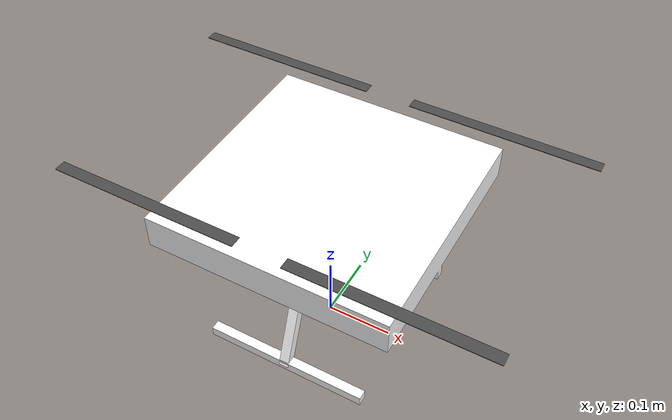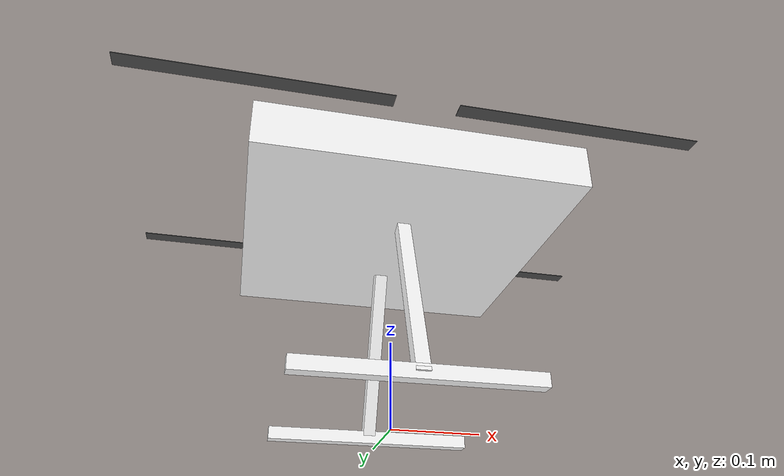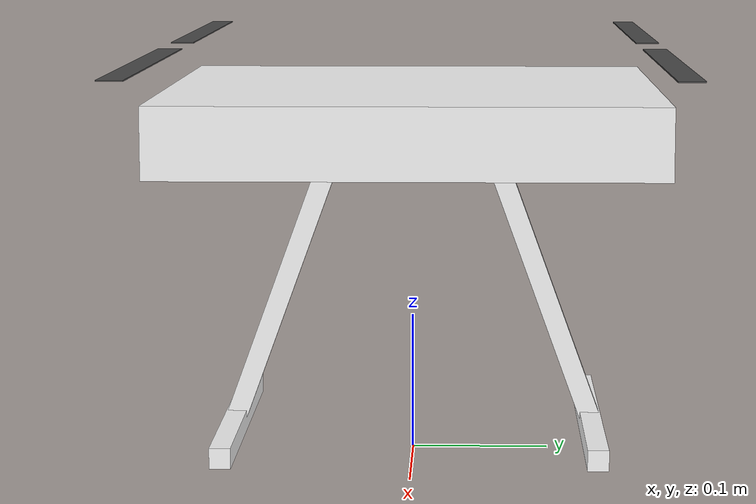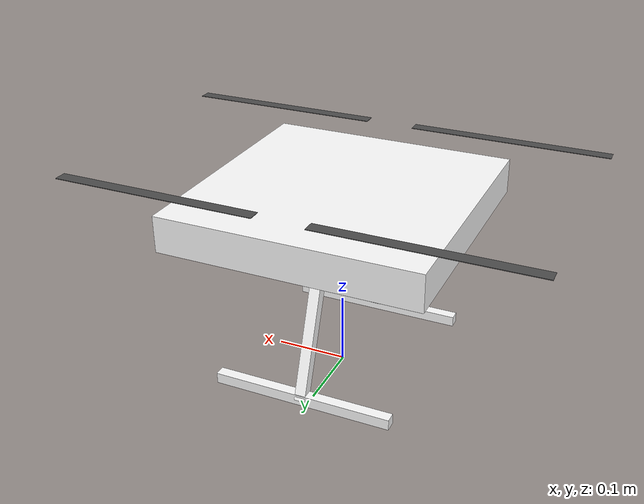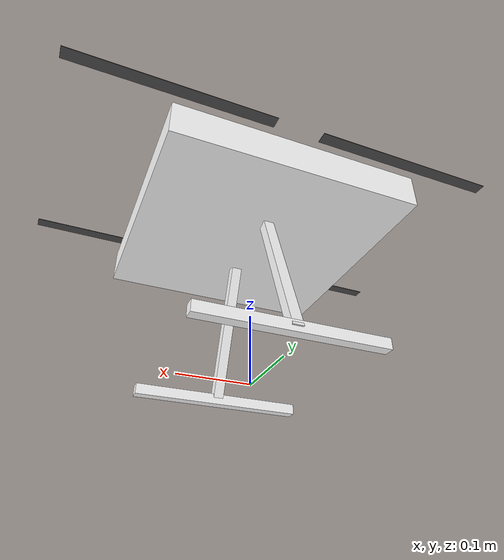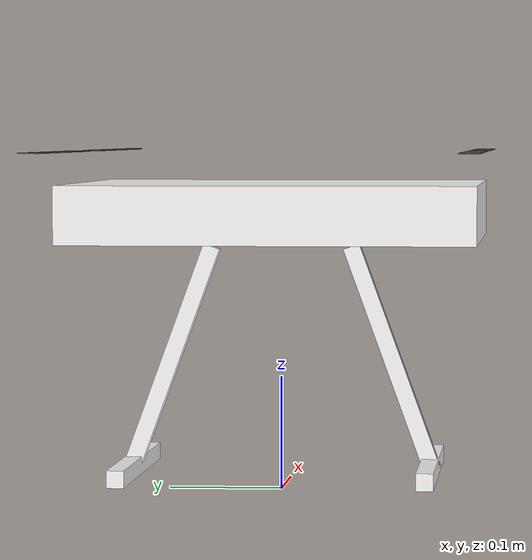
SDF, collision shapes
<?xml version="1.0" encoding="UTF-8"?>
<sdf version='1.9'>
  <model name='x500_px4'>
    <pose>0 0 .24 0 0 0</pose>
    <self_collide>false</self_collide>
    <static>false</static>
    <link name="base_link">
      <inertial>
        <mass>2.0</mass>
        <inertia>
          <ixx>0.02166666666666667</ixx>
          <ixy>0</ixy>
          <ixz>0</ixz>
          <iyy>0.02166666666666667</iyy>
          <iyz>0</iyz>
          <izz>0.04000000000000001</izz>
        </inertia>
      </inertial>
      <gravity>true</gravity>
      <velocity_decay/>
      <visual name="base_link_visual">
        <pose>0 0 .025 0 0 3.141592654</pose>
        <geometry>
          <mesh>
            <scale>1 1 1</scale>
            <uri>model://x500_px4/meshes/NXP-HGD-CF.dae</uri>
          </mesh>
        </geometry>
      </visual>
      <visual name="5010_motor_base_0">
        <pose>0.174 0.174 .032 0 0 -.45</pose>
        <geometry>
          <mesh>
            <scale>1 1 1</scale>
            <uri>model://x500_px4/meshes/5010Base.dae</uri>
          </mesh>
        </geometry>
      </visual>
      <visual name="5010_motor_base_1">
        <pose>-0.174 0.174 .032 0 0 -.45</pose>
        <geometry>
          <mesh>
            <scale>1 1 1</scale>
            <uri>model://x500_px4/meshes/5010Base.dae</uri>
          </mesh>
        </geometry>
      </visual>
      <visual name="5010_motor_base_2">
        <pose>0.174 -0.174 .032 0 0 -.45</pose>
        <geometry>
          <mesh>
            <scale>1 1 1</scale>
            <uri>model://x500_px4/meshes/5010Base.dae</uri>
          </mesh>
        </geometry>
      </visual>
      <visual name="5010_motor_base_3">
        <pose>-0.174 -0.174 .032 0 0 -.45</pose>
        <geometry>
          <mesh>
            <scale>1 1 1</scale>
            <uri>model://x500_px4/meshes/5010Base.dae</uri>
          </mesh>
        </geometry>
      </visual>
      <visual name="NXP_FMUK66_FRONT">
        <pose>0.047 .001 .043 1 0 1.57</pose>
        <cast_shadows>false</cast_shadows>
        <geometry>
          <box>
            <size>.013 .007 .0001</size>
          </box>
        </geometry>
        <material>
          <diffuse>1.0 1.0 1.0</diffuse>
          <specular>1.0 1.0 1.0</specular>
          <pbr>
            <metal>
              <albedo_map>model://x500_px4/materials/textures/nxp.png</albedo_map>
            </metal>
          </pbr>
        </material>
      </visual>
      <visual name="NXP_FMUK66_TOP">
        <pose>-0.023 0 .0515 0 0 -1.57</pose>
        <cast_shadows>false</cast_shadows>
        <geometry>
          <box>
            <size>.013 .007 .0001</size>
          </box>
        </geometry>
        <material>
          <diffuse>1.0 1.0 1.0</diffuse>
          <specular>1.0 1.0 1.0</specular>
          <pbr>
            <metal>
              <albedo_map>model://x500_px4/materials/textures/nxp.png</albedo_map>
            </metal>
          </pbr>
        </material>
      </visual>
      <visual name="RDDRONE_FMUK66_TOP">
        <pose>-.03 0 .0515 0 0 -1.57</pose>
        <cast_shadows>false</cast_shadows>
        <geometry>
          <box>
            <size>.032 .0034 .0001</size>
          </box>
        </geometry>
        <material>
          <diffuse>1.0 1.0 1.0</diffuse>
          <specular>1.0 1.0 1.0</specular>
          <pbr>
            <metal>
              <albedo_map>model://x500_px4/materials/textures/rd.png</albedo_map>
            </metal>
          </pbr>
        </material>
      </visual>
      <collision name="base_link_collision_0">
        <pose>0 0 .007 0 0 0</pose>
        <geometry>
          <box>
            <size>0.35355339059327373 0.35355339059327373 0.05</size>
          </box>
        </geometry>
        <surface>
          <contact>
            <ode>
              <min_depth>0.001</min_depth>
              <max_vel>0</max_vel>
            </ode>
          </contact>
          <friction>
            <ode/>
          </friction>
        </surface>
      </collision>
      <collision name="base_link_collision_1">
        <pose>0 -0.098 -.123 -0.35 0 0</pose>
        <geometry>
          <box>
            <size>0.015 0.015 0.21</size>
          </box>
        </geometry>
        <surface>
          <contact>
            <ode>
              <min_depth>0.001</min_depth>
              <max_vel>0</max_vel>
            </ode>
          </contact>
          <friction>
            <ode/>
          </friction>
        </surface>
      </collision>
      <collision name="base_link_collision_2">
        <pose>0 0.098 -.123 0.35 0 0</pose>
        <geometry>
          <box>
            <size>0.015 0.015 0.21</size>
          </box>
        </geometry>
        <surface>
          <contact>
            <ode>
              <min_depth>0.001</min_depth>
              <max_vel>0</max_vel>
            </ode>
          </contact>
          <friction>
            <ode/>
          </friction>
        </surface>
      </collision>
      <collision name="base_link_collision_3">
        <pose>0 -0.132 -.2195 0 0 0</pose>
        <geometry>
          <box>
            <size>0.25 0.015 0.015</size>
          </box>
        </geometry>
        <surface>
          <contact>
            <ode>
              <min_depth>0.001</min_depth>
              <max_vel>0</max_vel>
            </ode>
          </contact>
          <friction>
            <ode/>
          </friction>
        </surface>
      </collision>
      <collision name="base_link_collision_4">
        <pose>0 0.132 -.2195 0 0 0</pose>
        <geometry>
          <box>
            <size>0.25 0.015 0.015</size>
          </box>
        </geometry>
        <surface>
          <contact>
            <ode>
              <min_depth>0.001</min_depth>
              <max_vel>0</max_vel>
            </ode>
          </contact>
          <friction>
            <ode/>
          </friction>
        </surface>
      </collision>
      <sensor name="air_pressure_sensor" type="air_pressure">
        <always_on>1</always_on>
        <update_rate>50</update_rate>
        <air_pressure>
          <pressure>
            <noise type="gaussian">
              <mean>0</mean>
              <stddev>0.01</stddev>
            </noise>
          </pressure>
        </air_pressure>
      </sensor>
      <sensor name="imu_sensor" type="imu">
        <always_on>1</always_on>
        <update_rate>250</update_rate>
        <imu>
          <angular_velocity>
            <x>
              <noise type="gaussian">
                <mean>0</mean>
                <stddev>0.00018665</stddev>
                <dynamic_bias_stddev>3.8785e-05</dynamic_bias_stddev>
                <dynamic_bias_correlation_time>1000</dynamic_bias_correlation_time>
              </noise>
            </x>
            <y>
              <noise type="gaussian">
                <mean>0</mean>
                <stddev>0.00018665</stddev>
                <dynamic_bias_stddev>3.8785e-05</dynamic_bias_stddev>
                <dynamic_bias_correlation_time>1000</dynamic_bias_correlation_time>
              </noise>
            </y>
            <z>
              <noise type="gaussian">
                <mean>0</mean>
                <stddev>0.00018665</stddev>
                <dynamic_bias_stddev>3.8785e-05</dynamic_bias_stddev>
                <dynamic_bias_correlation_time>1000</dynamic_bias_correlation_time>
              </noise>
            </z>
          </angular_velocity>
          <linear_acceleration>
            <x>
              <noise type="gaussian">
                <mean>0</mean>
                <stddev>0.00186</stddev>
                <dynamic_bias_stddev>0.006</dynamic_bias_stddev>
                <dynamic_bias_correlation_time>300</dynamic_bias_correlation_time>
              </noise>
            </x>
            <y>
              <noise type="gaussian">
                <mean>0</mean>
                <stddev>0.00186</stddev>
                <dynamic_bias_stddev>0.006</dynamic_bias_stddev>
                <dynamic_bias_correlation_time>300</dynamic_bias_correlation_time>
              </noise>
            </y>
            <z>
              <noise type="gaussian">
                <mean>0</mean>
                <stddev>0.00186</stddev>
                <dynamic_bias_stddev>0.006</dynamic_bias_stddev>
                <dynamic_bias_correlation_time>300</dynamic_bias_correlation_time>
              </noise>
            </z>
          </linear_acceleration>
        </imu>
      </sensor>
      <sensor name="navsat_sensor" type="navsat">
        <always_on>1</always_on>
        <update_rate>30</update_rate>
      </sensor>
    </link>

    <!-- IMU -->
    <model name='imu'>
        <link name="internal">
            <inertial>
                <mass>0.005</mass>
                <inertia>
                    <ixx>8.33e-06</ixx>
                    <ixy>0</ixy>
                    <ixz>0</ixz>
                    <iyy>8.33e-06</iyy>
                    <iyz>0</iyz>
                    <izz>8.33e-06</izz>
                </inertia>
            </inertial>
            <sensor name='imu' type='imu'>
                <always_on>1</always_on>
                <update_rate>250</update_rate>
                <imu>
                    <angular_velocity>
                        <x>
                            <noise type='gaussian'>
                                <mean>0</mean>
                                <stddev>0.009</stddev>
                                <bias_mean>0.00075</bias_mean>
                                <bias_stddev>0.005</bias_stddev>
                                <dynamic_bias_stddev>0.00002</dynamic_bias_stddev>
                                <dynamic_bias_correlation_time>400.0</dynamic_bias_correlation_time>
                                <precision>0.00025</precision>
                            </noise>
                        </x>
                        <y>
                            <noise type='gaussian'>
                                <mean>0</mean>
                                <stddev>0.009</stddev>
                                <bias_mean>0.00075</bias_mean>
                                <bias_stddev>0.005</bias_stddev>
                                <dynamic_bias_stddev>0.00002</dynamic_bias_stddev>
                                <dynamic_bias_correlation_time>400.0</dynamic_bias_correlation_time>
                                <precision>0.00025</precision>
                            </noise>
                        </y>
                        <z>
                            <noise type='gaussian'>
                                <mean>0</mean>
                                <stddev>0.009</stddev>
                                <bias_mean>0.00075</bias_mean>
                                <bias_stddev>0.005</bias_stddev>
                                <dynamic_bias_stddev>0.00002</dynamic_bias_stddev>
                                <dynamic_bias_correlation_time>400.0</dynamic_bias_correlation_time>
                                <precision>0.00025</precision>
                            </noise>
                        </z>
                    </angular_velocity>
                    <linear_acceleration>
                        <x>
                            <noise type='gaussian'>
                                <mean>0</mean>
                                <stddev>0.021</stddev>
                                <bias_mean>0.05</bias_mean>
                                <bias_stddev>0.0075</bias_stddev>
                                <dynamic_bias_stddev>0.000375</dynamic_bias_stddev>
                                <dynamic_bias_correlation_time>175.0</dynamic_bias_correlation_time>
                                <precision>0.005</precision>
                            </noise>
                        </x>
                        <y>
                            <noise type='gaussian'>
                                <mean>0</mean>
                                <stddev>0.021</stddev>
                                <bias_mean>0.05</bias_mean>
                                <bias_stddev>0.0075</bias_stddev>
                                <dynamic_bias_stddev>0.000375</dynamic_bias_stddev>
                                <dynamic_bias_correlation_time>175.0</dynamic_bias_correlation_time>
                                <precision>0.005</precision>
                            </noise>
                        </y>
                        <z>
                            <noise type='gaussian'>
                                <mean>0</mean>
                                <stddev>0.021</stddev>
                                <bias_mean>0.05</bias_mean>
                                <bias_stddev>0.0075</bias_stddev>
                                <dynamic_bias_stddev>0.000375</dynamic_bias_stddev>
                                <dynamic_bias_correlation_time>175.0</dynamic_bias_correlation_time>
                                <precision>0.005</precision>
                            </noise>
                        </z>
                    </linear_acceleration>
                </imu>
            </sensor>
        </link>
    </model>

    <joint name="imu_joint" type="fixed">
        <parent>base_link</parent>
        <child>imu</child>
    </joint>

    <link name="rotor_0">
      <gravity>true</gravity>
      <self_collide>false</self_collide>
      <velocity_decay/>
      <pose>0.174 -0.174 0.06 0 0 0</pose>
      <inertial>
          <mass>0.016076923076923075</mass>
          <inertia>
            <ixx>3.8464910483993325e-07</ixx>
            <iyy>2.6115851691700804e-05</iyy>
            <izz>2.649858234714004e-05</izz>
          </inertia>
        </inertial>
      <visual name="rotor_0_visual">
        <pose>-0.022 -0.14638461538461536 -0.016 0 0 0</pose>
        <geometry>
          <mesh>
            <scale>0.8461538461538461 0.8461538461538461 0.8461538461538461</scale>
            <uri>model://x500_px4/meshes/1345_prop_ccw.stl</uri>
          </mesh>
        </geometry>
        <material>
          <script>
            <name>Gazebo/DarkGrey</name>
            <uri>file://media/materials/scripts/gazebo.material</uri>
          </script>
        </material>
      </visual>
      <visual name="rotor_0_visual_motor_bell">
        <pose>0 0 -.032 0 0 0</pose>
        <geometry>
          <mesh>
            <scale>1 1 1</scale>
            <uri>model://x500_px4/meshes/5010Bell.dae</uri>
          </mesh>
        </geometry>
      </visual>
      <collision name="rotor_0_collision">
        <pose>0 0 0 0 0 0 </pose>
        <geometry>
          <box>
            <size>0.2792307692307692 0.016923076923076923 0.0008461538461538462</size>
          </box>
        </geometry>
        <surface>
          <contact>
            <ode>
              <min_depth>0.001</min_depth>
              <max_vel>0</max_vel>
            </ode>
          </contact>
          <friction>
            <ode/>
          </friction>
        </surface>
      </collision>
    </link>
    <joint name="rotor_0_joint" type="revolute">
      <parent>base_link</parent>
      <child>rotor_0</child>
      <axis>
        <xyz>0 0 1</xyz>
        <limit>
          <lower>-1e+16</lower>
          <upper>1e+16</upper>
        </limit>
        <dynamics>
          <spring_reference>0</spring_reference>
          <spring_stiffness>0</spring_stiffness>
        </dynamics>
      </axis>
    </joint>
    <link name="rotor_1">
      <gravity>true</gravity>
      <self_collide>false</self_collide>
      <velocity_decay/>
      <pose>-0.174 0.174 0.06 0 0 0</pose>
      <inertial>
          <mass>0.016076923076923075</mass>
          <inertia>
            <ixx>3.8464910483993325e-07</ixx>
            <iyy>2.6115851691700804e-05</iyy>
            <izz>2.649858234714004e-05</izz>
          </inertia>
        </inertial>
      <visual name="rotor_1_visual">
        <pose>-0.022 -0.14638461538461536 -0.016 0 0 0</pose>
        <geometry>
          <mesh>
            <scale>0.8461538461538461 0.8461538461538461 0.8461538461538461</scale>
            <uri>model://x500_px4/meshes/1345_prop_ccw.stl</uri>
          </mesh>
        </geometry>
        <material>
          <script>
            <name>Gazebo/DarkGrey</name>
            <uri>file://media/materials/scripts/gazebo.material</uri>
          </script>
        </material>
      </visual>
      <visual name="rotor_1_visual_motor_top">
        <pose>0 0 -.032 0 0 0</pose>
        <geometry>
          <mesh>
            <scale>1 1 1</scale>
            <uri>model://x500_px4/meshes/5010Bell.dae</uri>
          </mesh>
        </geometry>
      </visual>
      <collision name="rotor_1_collision">
        <pose>0 0 0 0 0 0 </pose>
        <geometry>
          <box>
            <size>0.2792307692307692 0.016923076923076923 0.0008461538461538462</size>
          </box>
        </geometry>
        <surface>
          <contact>
            <ode>
              <min_depth>0.001</min_depth>
              <max_vel>0</max_vel>
            </ode>
          </contact>
          <friction>
            <ode/>
          </friction>
        </surface>
      </collision>
    </link>
    <joint name="rotor_1_joint" type="revolute">
      <parent>base_link</parent>
      <child>rotor_1</child>
      <axis>
        <xyz>0 0 1</xyz>
        <limit>
          <lower>-1e+16</lower>
          <upper>1e+16</upper>
        </limit>
        <dynamics>
          <spring_reference>0</spring_reference>
          <spring_stiffness>0</spring_stiffness>
        </dynamics>
      </axis>
    </joint>
    <link name="rotor_2">
      <gravity>true</gravity>
      <self_collide>false</self_collide>
      <velocity_decay/>
      <pose>0.174 0.174 0.06 0 0 0</pose>
      <inertial>
          <mass>0.016076923076923075</mass>
          <inertia>
            <ixx>3.8464910483993325e-07</ixx>
            <iyy>2.6115851691700804e-05</iyy>
            <izz>2.649858234714004e-05</izz>
          </inertia>
        </inertial>
      <visual name="rotor_2_visual">
        <pose>-0.022 -0.14638461538461536 -0.016 0 0 0</pose>
        <geometry>
          <mesh>
            <scale>0.8461538461538461 0.8461538461538461 0.8461538461538461</scale>
            <uri>model://x500_px4/meshes/1345_prop_cw.stl</uri>
          </mesh>
        </geometry>
        <material>
          <script>
            <name>Gazebo/DarkGrey</name>
            <uri>file://media/materials/scripts/gazebo.material</uri>
          </script>
        </material>
      </visual>
      <visual name="rotor_2_visual_motor_top">
        <pose>0 0 -.032 0 0 0</pose>
        <geometry>
          <mesh>
            <scale>1 1 1</scale>
            <uri>model://x500_px4/meshes/5010Bell.dae</uri>
          </mesh>
        </geometry>
      </visual>
      <collision name="rotor_2_collision">
        <pose>0 0 0 0 0 0 </pose>
        <geometry>
          <box>
            <size>0.2792307692307692 0.016923076923076923 0.0008461538461538462</size>
          </box>
        </geometry>
        <surface>
          <contact>
            <ode>
              <min_depth>0.001</min_depth>
              <max_vel>0</max_vel>
            </ode>
          </contact>
          <friction>
            <ode/>
          </friction>
        </surface>
      </collision>
    </link>
    <joint name="rotor_2_joint" type="revolute">
      <parent>base_link</parent>
      <child>rotor_2</child>
      <axis>
        <xyz>0 0 1</xyz>
        <limit>
          <lower>-1e+16</lower>
          <upper>1e+16</upper>
        </limit>
        <dynamics>
          <spring_reference>0</spring_reference>
          <spring_stiffness>0</spring_stiffness>
        </dynamics>
      </axis>
    </joint>
    <link name="rotor_3">
      <gravity>true</gravity>
      <self_collide>false</self_collide>
      <velocity_decay/>
      <pose>-0.174 -0.174 0.06 0 0 0</pose>
      <inertial>
          <mass>0.016076923076923075</mass>
          <inertia>
            <ixx>3.8464910483993325e-07</ixx>
            <iyy>2.6115851691700804e-05</iyy>
            <izz>2.649858234714004e-05</izz>
          </inertia>
        </inertial>
      <visual name="rotor_3_visual">
        <pose>-0.022 -0.14638461538461536 -0.016 0 0 0</pose>
        <geometry>
          <mesh>
            <scale>0.8461538461538461 0.8461538461538461 0.8461538461538461</scale>
            <uri>model://x500_px4/meshes/1345_prop_cw.stl</uri>
          </mesh>
        </geometry>
        <material>
          <script>
            <name>Gazebo/DarkGrey</name>
            <uri>file://media/materials/scripts/gazebo.material</uri>
          </script>
        </material>
      </visual>
      <visual name="rotor_3_visual_motor_top">
        <pose>0 0 -.032 0 0 0</pose>
        <geometry>
          <mesh>
            <scale>1 1 1</scale>
            <uri>model://x500_px4/meshes/5010Bell.dae</uri>
          </mesh>
        </geometry>
      </visual>
      <collision name="rotor_3_collision">
        <pose>0 0 0 0 0 0 </pose>
        <geometry>
          <box>
            <size>0.2792307692307692 0.016923076923076923 0.0008461538461538462</size>
          </box>
        </geometry>
        <surface>
          <contact>
            <ode>
              <min_depth>0.001</min_depth>
              <max_vel>0</max_vel>
            </ode>
          </contact>
          <friction>
            <ode/>
          </friction>
        </surface>
      </collision>
    </link>
    <joint name="rotor_3_joint" type="revolute">
      <parent>base_link</parent>
      <child>rotor_3</child>
      <axis>
        <xyz>0 0 1</xyz>
        <limit>
          <lower>-1e+16</lower>
          <upper>1e+16</upper>
        </limit>
        <dynamics>
          <spring_reference>0</spring_reference>
          <spring_stiffness>0</spring_stiffness>
        </dynamics>
      </axis>
    </joint>

    <!-- adição de plugins de movimento do drone -->
        <!-- Publica a pose do modelo (ground truth) para poder ser bridgeada ao ROS -->
<!-- Publica a pose do modelo (ground truth) para poder ser bridgeada ao ROS -->
    <plugin filename="gz-sim-pose-publisher-system" name="gz::sim::systems::PosePublisher">
      <publish_model_pose>true</publish_model_pose>
      <publish_link_pose>false</publish_link_pose>
      <publish_sensor_pose>false</publish_sensor_pose>
      <publish_collision_pose>false</publish_collision_pose>
      <publish_visual_pose>false</publish_visual_pose>
      <publish_nested_model_pose>false</publish_nested_model_pose>
      <use_pose_vector_msg>false</use_pose_vector_msg>
      <static_publisher>false</static_publisher>
    </plugin>

    <!-- Modelo de motor por rotor: converte comando de velocidade em empuxo real -->
    <plugin filename="gz-sim-multicopter-motor-model-system" name="gz::sim::systems::MulticopterMotorModel">
      <robotNamespace>x500_0</robotNamespace>
      <jointName>rotor_0_joint</jointName>
      <linkName>rotor_0</linkName>
      <turningDirection>ccw</turningDirection>
      <timeConstantUp>0.0125</timeConstantUp>
      <timeConstantDown>0.025</timeConstantDown>
      <maxRotVelocity>1000.0</maxRotVelocity>
      <motorConstant>8.54858e-06</motorConstant>
      <momentConstant>0.016</momentConstant>
      <commandSubTopic>command/motor_speed</commandSubTopic>
      <motorNumber>0</motorNumber>
      <rotorDragCoefficient>8.06428e-05</rotorDragCoefficient>
      <rollingMomentCoefficient>1e-06</rollingMomentCoefficient>
      <rotorVelocitySlowdownSim>10</rotorVelocitySlowdownSim>
      <motorType>velocity</motorType>
    </plugin>
    <plugin filename="gz-sim-multicopter-motor-model-system" name="gz::sim::systems::MulticopterMotorModel">
      <robotNamespace>x500_0</robotNamespace>
      <jointName>rotor_1_joint</jointName>
      <linkName>rotor_1</linkName>
      <turningDirection>ccw</turningDirection>
      <timeConstantUp>0.0125</timeConstantUp>
      <timeConstantDown>0.025</timeConstantDown>
      <maxRotVelocity>1000.0</maxRotVelocity>
      <motorConstant>8.54858e-06</motorConstant>
      <momentConstant>0.016</momentConstant>
      <commandSubTopic>command/motor_speed</commandSubTopic>
      <motorNumber>1</motorNumber>
      <rotorDragCoefficient>8.06428e-05</rotorDragCoefficient>
      <rollingMomentCoefficient>1e-06</rollingMomentCoefficient>
      <rotorVelocitySlowdownSim>10</rotorVelocitySlowdownSim>
      <motorType>velocity</motorType>
    </plugin>
    <plugin filename="gz-sim-multicopter-motor-model-system" name="gz::sim::systems::MulticopterMotorModel">
      <robotNamespace>x500_0</robotNamespace>
      <jointName>rotor_2_joint</jointName>
      <linkName>rotor_2</linkName>
      <turningDirection>cw</turningDirection>
      <timeConstantUp>0.0125</timeConstantUp>
      <timeConstantDown>0.025</timeConstantDown>
      <maxRotVelocity>1000.0</maxRotVelocity>
      <motorConstant>8.54858e-06</motorConstant>
      <momentConstant>0.016</momentConstant>
      <commandSubTopic>command/motor_speed</commandSubTopic>
      <motorNumber>2</motorNumber>
      <rotorDragCoefficient>8.06428e-05</rotorDragCoefficient>
      <rollingMomentCoefficient>1e-06</rollingMomentCoefficient>
      <rotorVelocitySlowdownSim>10</rotorVelocitySlowdownSim>
      <motorType>velocity</motorType>
    </plugin>
    <plugin filename="gz-sim-multicopter-motor-model-system" name="gz::sim::systems::MulticopterMotorModel">
      <robotNamespace>x500_0</robotNamespace>
      <jointName>rotor_3_joint</jointName>
      <linkName>rotor_3</linkName>
      <turningDirection>cw</turningDirection>
      <timeConstantUp>0.0125</timeConstantUp>
      <timeConstantDown>0.025</timeConstantDown>
      <maxRotVelocity>1000.0</maxRotVelocity>
      <motorConstant>8.54858e-06</motorConstant>
      <momentConstant>0.016</momentConstant>
      <commandSubTopic>command/motor_speed</commandSubTopic>
      <motorNumber>3</motorNumber>
      <rotorDragCoefficient>8.06428e-05</rotorDragCoefficient>
      <rollingMomentCoefficient>1e-06</rollingMomentCoefficient>
      <rotorVelocitySlowdownSim>10</rotorVelocitySlowdownSim>
      <motorType>velocity</motorType>
    </plugin>

    <!-- Controlador de velocidade: recebe cmd_vel + enable e comanda os 4 motores acima -->
    <plugin filename="gz-sim-multicopter-control-system" name="gz::sim::systems::MulticopterVelocityControl">
      <robotNamespace>x500_0</robotNamespace>
      <commandSubTopic>cmd_vel</commandSubTopic>
      <enableSubTopic>enable</enableSubTopic>
      <comLinkName>base_link</comLinkName>
      <velocityGain>2.7 2.7 2.7</velocityGain>
      <attitudeGain>2 3 0.15</attitudeGain>
      <angularRateGain>0.4 0.52 0.18</angularRateGain>
      <maximumLinearAcceleration>2 2 2</maximumLinearAcceleration>
      <maximumLinearVelocity>3 3 2</maximumLinearVelocity>
      <maximumAngularVelocity>3 3 3</maximumAngularVelocity>
      <rotorConfiguration>
        <rotor>
          <jointName>rotor_0_joint</jointName>
          <forceConstant>8.54858e-06</forceConstant>
          <momentConstant>0.016</momentConstant>
          <direction>1</direction>
        </rotor>
        <rotor>
          <jointName>rotor_1_joint</jointName>
          <forceConstant>8.54858e-06</forceConstant>
          <momentConstant>0.016</momentConstant>
          <direction>1</direction>
        </rotor>
        <rotor>
          <jointName>rotor_2_joint</jointName>
          <forceConstant>8.54858e-06</forceConstant>
          <momentConstant>0.016</momentConstant>
          <direction>-1</direction>
        </rotor>
        <rotor>
          <jointName>rotor_3_joint</jointName>
          <forceConstant>8.54858e-06</forceConstant>
          <momentConstant>0.016</momentConstant>
          <direction>-1</direction>
        </rotor>
      </rotorConfiguration>
    </plugin>

  </model>
</sdf>
